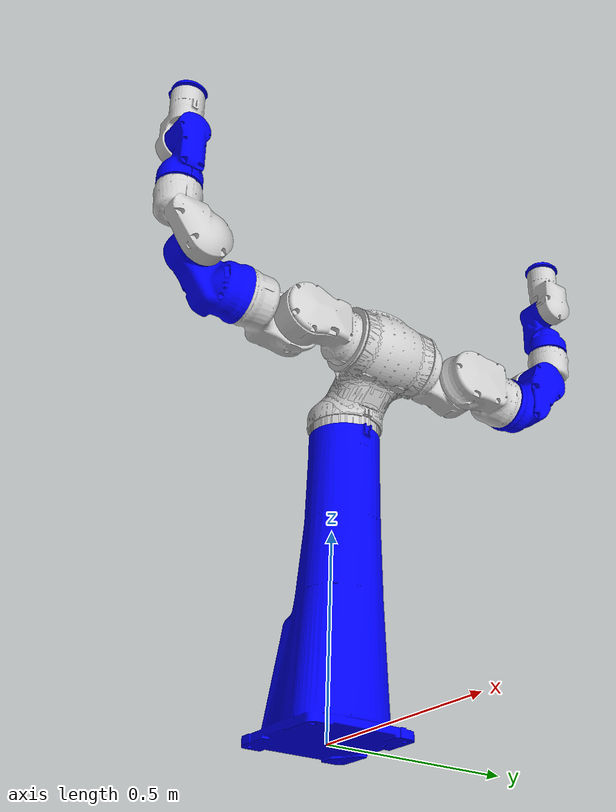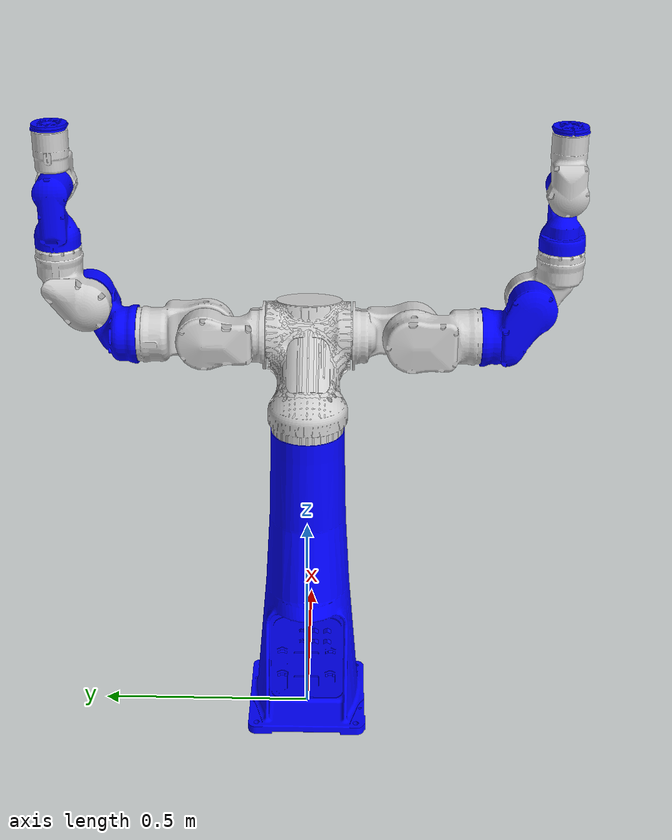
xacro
<?xml version="1.0" ?>
<robot xmlns:xacro="http://ros.org/wiki/xacro"
    name="sda5f">
        <xacro:include filename="$(find motoman_sda5f_support)/urdf/common_torso_macro.xacro" />
        <xacro:include filename="$(find motoman_sda5f_support)/urdf/arm_macro.xacro" />

        <xacro:torso name="torso" prefix="torso_"/>

        <xacro:motoman_arm name="arm_left" prefix="arm_left_" parent="torso_link_b1" reflect="1">
            <origin xyz="0.0 0.0 0.0" rpy="0.0 0 0" />
        </xacro:motoman_arm>

        <xacro:motoman_arm name="arm_right" prefix="arm_right_" parent="torso_link_b1" reflect="-1">
            <origin xyz="0.0 0.0 0.0" rpy="1.57 0 0" />
        </xacro:motoman_arm>
</robot>

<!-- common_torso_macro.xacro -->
<robot xmlns:xacro="http://ros.org/wiki/xacro">
	<xacro:macro name="torso" params="name prefix">
		<!-- link list -->
		<link name="base_link">
			<visual>
				<geometry>
					<mesh filename="package://motoman_sda5f_support/meshes/dae/base_link.dae" />
				</geometry>
				<material name="blue">
					<color rgba="0 0 1 1"/>
				</material>
			</visual>
			<collision>
				<geometry>
					<mesh filename="package://motoman_sda5f_support/meshes/collision/base_link.STL" />
				</geometry>
				<material name="yellow">
					<color rgba="0 1 1 1"/>
				</material>
			</collision>
		</link>
		<link name="${prefix}link_b1">
			<visual>
				<origin rpy="0 0 0" xyz="0 0 0"/>
				<geometry>
					<mesh filename="package://motoman_sda5f_support/meshes/dae/torso_link.dae"/>
				</geometry>
				<material name="silver">
					<color rgba="0.8 0.8 0.8 1"/>
				</material>
			</visual>
			<collision>
				<origin rpy="0 0 0" xyz="0 0 0"/>
				<geometry>
					<mesh filename="package://motoman_sda5f_support/meshes/collision/torso_link.STL" />
				</geometry>
				<material name="yellow"/>
			</collision>
		</link>
		<link name="${prefix}link_b2">
			<visual>
				<origin rpy="0 0 0" xyz="0 0 0"/>
				<geometry>
					<mesh filename="package://motoman_sda5f_support/meshes/stl/torso_link.stl"/>
				</geometry>
				<material name="silver">
					<color rgba="0.8 0.8 0.8 1"/>
				</material>
			</visual>
			<collision>
				<origin rpy="0 0 0" xyz="0 0 0"/>
				<geometry>
					<mesh filename="package://motoman_sda5f_support/meshes/collision/torso_link.STL" />
				</geometry>
				<material name="yellow"/>
			</collision>
		</link>
		<!-- joint list -->
		<joint name="${prefix}joint_b1" type="revolute">
			<parent link="base_link"/>
			<child link="${prefix}link_b1"/>
			<origin xyz="0.045 0 0.7296" rpy="0 0 0"/>
			<axis xyz="0 0 1" />
			<limit lower="-2.9570" upper="2.9570" effort="100" velocity="3.14" />
		</joint>
		<joint name="${prefix}joint_b2" type="revolute">
			<parent link="base_link"/>
			<child link="${prefix}link_b2"/>
			<origin xyz="0.045 0 0.7296" rpy="0 0 0"/>
			<axis xyz="0 0 1" />
			<limit lower="-2.9570" upper="2.9570" effort="100" velocity="3.14" />
			<mimic joint="${prefix}joint_b1" multiplier="1" offset="0"/>
		</joint>
		<!-- end of joint list -->
	</xacro:macro>
</robot>

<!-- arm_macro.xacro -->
<robot xmlns:xacro="http://ros.org/wiki/xacro">
        <xacro:property name="pi" value="3.14159265359" />
	<xacro:macro name="motoman_arm" params="name prefix parent *origin reflect">
		<link name="${prefix}link_1_s">
			<visual>
				<origin rpy="0 0 0" xyz="0 0 0"/>
				<geometry>
					<mesh filename="package://motoman_sda5f_support/meshes/dae/arm_left_link_1_s.dae"/>
				</geometry>
				<material name="blue">
					<color rgba="0.8 0.8 0.8 1"/>
				</material>
			</visual>
			<collision>
				<origin rpy="0 0 0" xyz="0 0 0"/>
				<geometry>
					<mesh filename="package://motoman_sda5f_support/meshes/collision/arm_left_link_1_s.STL" />
				</geometry>
				<material name="yellow"/>
			</collision>
		</link>
		<link name="${prefix}link_2_l">
			<visual>
				<origin rpy="0 0 0" xyz="0 0 0"/>
				<geometry>
					<mesh filename="package://motoman_sda5f_support/meshes/dae/arm_left_link_2_l.dae"/>
				</geometry>
				<material name="silver"/>
			</visual>
			<collision>
				<origin rpy="0 0 0" xyz="0 0 0"/>
				<geometry>
					<mesh filename="package://motoman_sda5f_support/meshes/collision/arm_right_link_2_l.STL"/>
				</geometry>
				<material name="yellow"/>
			</collision>
		</link>
		<link name="${prefix}link_3_e">
			<visual>
				<origin rpy="0 0 0" xyz="0 0 0"/>
				<geometry>
					<mesh filename="package://motoman_sda5f_support/meshes/dae/arm_left_link_3_e.dae"/>
				</geometry>
				<material name="blue"/>
			</visual>
			<collision>
				<origin rpy="0 0 0" xyz="0 0 0"/>
				<geometry>
					<mesh filename="package://motoman_sda5f_support/meshes/collision/arm_right_link_3_e.STL"/>
				</geometry>
				<material name="yellow"/>
			</collision>
		</link>
		<link name="${prefix}link_4_u">
			<visual>
				<origin rpy="0 0 0" xyz="0 0 0"/>
				<geometry>
					<mesh filename="package://motoman_sda5f_support/meshes/dae/arm_left_link_4_u.dae"/>
				</geometry>
				<material name="silver"/>
			</visual>
			<collision>
				<origin rpy="0 0 0" xyz="0 0 0"/>
				<geometry>
					<mesh filename="package://motoman_sda5f_support/meshes/collision/arm_right_link_4_u.STL"/>
				</geometry>
				<material name="yellow"/>
			</collision>
		</link>
		<link name="${prefix}link_5_r">
			<visual>
				<origin rpy="0 0 0" xyz="0 0 0"/>
				<geometry>
					<mesh filename="package://motoman_sda5f_support/meshes/dae/arm_left_link_5_r.dae"/>
				</geometry>
				<material name="blue"/>
			</visual>
			<collision>
				<origin rpy="0 0 0" xyz="0 0 0"/>
				<geometry>
					<mesh filename="package://motoman_sda5f_support/meshes/collision/arm_right_link_5_r.STL"/>
				</geometry>
				<material name="yellow"/>
			</collision>
		</link>
		<link name="${prefix}link_6_b">
			<visual>
				<origin rpy="0 0 0" xyz="0 0 0"/>
				<geometry>
					<mesh filename="package://motoman_sda5f_support/meshes/dae/arm_left_link_6_b.dae"/>
				</geometry>
				<material name="silver"/>
			</visual>
			<collision>
				<origin rpy="0 0 0" xyz="0 0 0"/>
				<geometry>
					<mesh filename="package://motoman_sda5f_support/meshes/collision/arm_right_link_6_b.STL"/>
				</geometry>
				<material name="yellow"/>
			</collision>
		</link>
		<link name="${prefix}link_7_t">
			<visual>
				<geometry>
					<mesh filename="package://motoman_sda5f_support/meshes/dae/arm_left_link_7_t.dae" />
				</geometry>
				<material name="blue"/>
			</visual>
			<collision>
				<geometry>
					<mesh filename="package://motoman_sda5f_support/meshes/collision/arm_right_link_7_t.STL" />
				</geometry>
				<material name="yellow"/>
			</collision>
		</link>
	    <link name="${prefix}link_tool0" />

		<joint name="${prefix}joint_1_s" type="revolute">
			<parent link="torso_link_b1"/>
			<child link="${prefix}link_1_s"/>
			<origin xyz="0.150 ${reflect*0.101} 0.1704" rpy="${reflect*-pi/2} ${reflect*-pi/2+pi/2} 0"/>
			<axis xyz="0 0 ${reflect}" />
			<limit lower="-1.57" upper="4.71" effort="0" velocity="3.48" />
		</joint>
		<joint name="${prefix}joint_2_l" type="revolute">
			<parent link="${prefix}link_1_s"/>
			<child link="${prefix}link_2_l"/>
			<origin xyz="0.0195 0.0 0.142" rpy="${-pi/2} 0 ${-pi/2}"/>
			<axis xyz="0 0 1" />
			<limit lower="-1.90" upper="1.90" effort="0" velocity="3.48" />
		</joint>
		<joint name="${prefix}joint_3_e" type="revolute">
			<parent link="${prefix}link_2_l"/>
			<child link="${prefix}link_3_e"/>
			<origin xyz="0.0 -0.165 -0.0195 " rpy="${-pi/2} 0 3.14"/>
			<axis xyz="0 0 ${reflect}" />
			<limit lower="-2.95" upper="2.95" effort="0" velocity="3.48" />
		</joint>
		<joint name="${prefix}joint_4_u" type="revolute">
			<parent link="${prefix}link_3_e"/>
			<child link="${prefix}link_4_u"/>
			<origin xyz="-0.085 0.017 0.105" rpy="${-pi/2} 0 0"/>
			<axis xyz="0 0 1" />
			<limit lower="-1.57" upper="2.00" effort="0" velocity="3.48" />
		</joint>
		<joint name="${prefix}joint_5_r" type="revolute">
			<parent link="${prefix}link_4_u"/>
			<child link="${prefix}link_5_r"/>
			<origin xyz="-0.134 -0.060 -0.017" rpy="${-pi/2} 0 ${-pi/2}"/>
			<axis xyz="0 0 ${reflect}" />
			<limit lower="-3.13" upper="3.13" effort="14.7" velocity="3.48" />
		</joint>
		<joint name="${prefix}joint_6_b" type="revolute">
			<parent link="${prefix}link_5_r"/>
			<child link="${prefix}link_6_b"/>
			<origin xyz="0 0.015 -0.136" rpy="0 ${pi/2} ${-pi/2}"/>
			<axis xyz="0 0 1" />
			<limit lower="-1.90" upper="1.90" effort="14.7" velocity="4.00" />
		</joint>
		<joint name="${prefix}joint_7_t" type="revolute">
			<parent link="${prefix}link_6_b"/>
			<child link="${prefix}link_7_t"/>
			<origin xyz="0.148 0.0 0.015" rpy="${-pi/2} 0 ${pi/2}"/>
			<axis xyz="0 0 ${reflect}" />
			<limit lower="-3.13" upper="3.13" effort="7.35" velocity="6.10" />
		</joint>
    <joint name="${prefix}joint_tool0" type="fixed" >
      <origin xyz="0 0 -0.05" rpy="0 3.14 0"/>
      <parent link="${prefix}link_7_t" />
      <child link="${prefix}link_tool0" />
    </joint>
		<!-- end of joint list -->
	</xacro:macro>
</robot>
